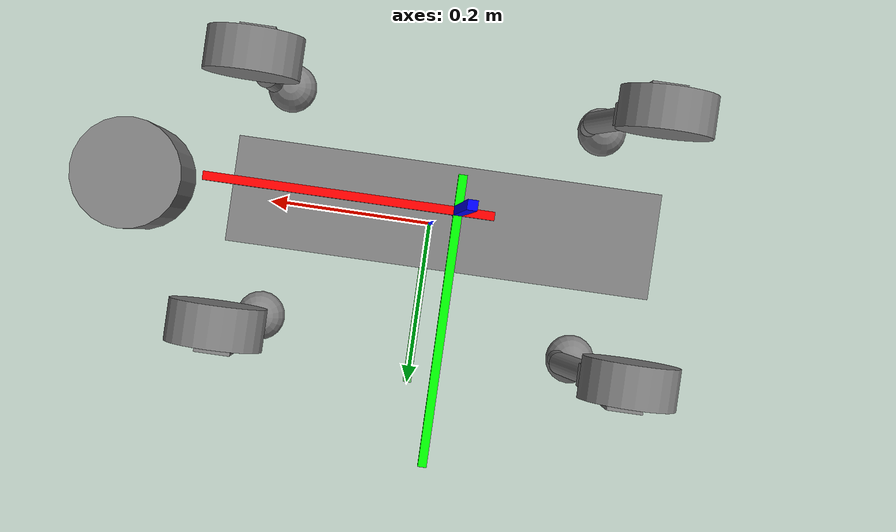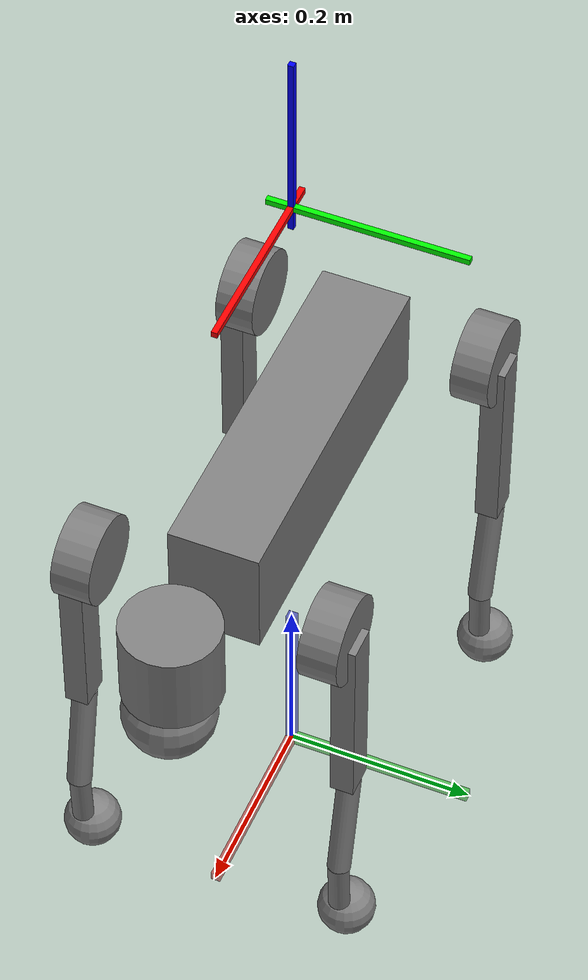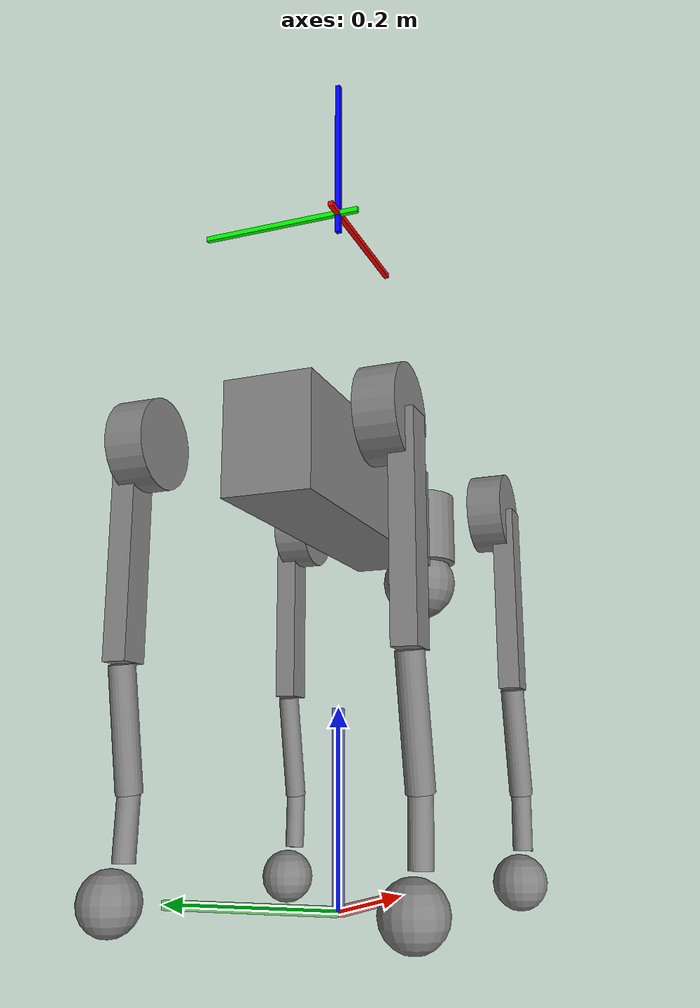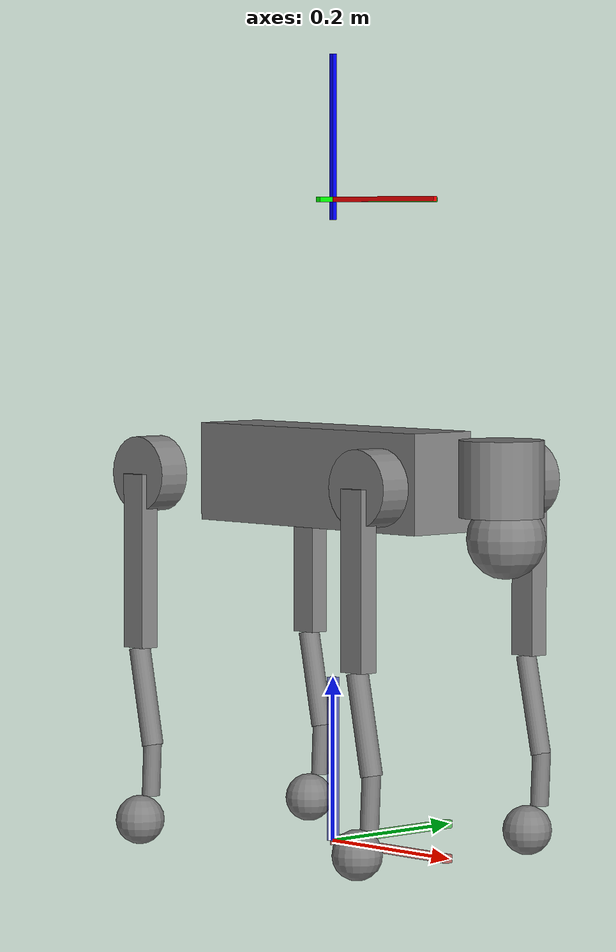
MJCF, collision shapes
<mujoco model="go2">
  <compiler angle="radian" meshdir="assets" autolimits="true"/>

  <option cone="elliptic" impratio="100"/>
  <option integrator="implicitfast"/>
  <default>
    <default class="go2">
      <geom friction="0.6" margin="0.001" condim="1"/>
      <joint axis="0 1 0" damping="0.5" armature="0.01"/>
      <position kp="45" dampratio="1" inheritrange="1"/>
      <default class="abduction">
        <joint axis="1 0 0" range="-1.0472 1.0472"/>
      </default>
      <default class="hip">
        <default class="front_hip">
          <joint range="-1.5708 3.4907"/>
        </default>
        <default class="back_hip">
          <joint range="-0.5236 4.5379"/>
        </default>
      </default>
      <default class="knee">
        <joint range="-2.7227 -0.83776"/>
      </default>
      <default class="visual">
        <geom type="mesh" contype="0" conaffinity="0" group="2"/>
      </default>
      <default class="collision">
        <geom group="3"/>
        <default class="foot">
          <geom type="sphere" size="0.03" friction="1 0.005 0.0001" pos="-0.002 0 -0.213" priority="1"
               solref="0.02 1" solimp="0.9 0.4 0.01" margin="0.01" gap="0.001"/>
        </default>
        <default class="foot_site">
          <site size="0.05" pos="-0.002 0 -0.213" group="3"/>
        </default>
      </default>
    </default>
  </default>

  <asset>
    <material name="metal" rgba=".9 .95 .95 1"/>
    <material name="black" rgba="0 0 0 1"/>
    <material name="white" rgba="1 1 1 1"/>
    <material name="gray" rgba="0.671705 0.692426 0.774270 1"/>

    <texture type="2d" name="Metal009_color"      file="../../../textures/Metal009_2K-PNG/Metal009_2K-PNG_Color.png"/>
    <texture type="2d" name="Metal009_roughness"  file="../../../textures/Metal009_2K-PNG/Metal009_2K-PNG_Roughness.png"/>
    <texture type="2d" name="Metal009_metalic"  file="../../../textures/Metal009_2K-PNG/Metal009_2K-PNG_Metalness.png"/>
    <texture type="2d" name="Metal009_normal"     file="../../../textures/Metal009_2K-PNG/Metal009_2K-PNG_NormalDX.png"/>

    <material name="pbr_metal_gray">
      <layer role="rgb"        texture="Metal009_color"/>
      <layer role="normal"     texture="Metal009_normal"/>
      <layer role="roughness"  texture="Metal009_roughness"/>
      <layer role="metallic"  texture="Metal009_metalic"/>
    </material>

    <texture type="2d" name="Metal044A_color"      file="../../../textures/Metal044A_2K-PNG/Metal044A_2K-PNG_Color.png"/>
    <texture type="2d" name="Metal044A_roughness"  file="../../../textures/Metal044A_2K-PNG/Metal044A_2K-PNG_Roughness.png"/>
    <texture type="2d" name="Metal044A_metalic"  file="../../../textures/Metal044A_2K-PNG/Metal044A_2K-PNG_Metalness.png"/>
    <texture type="2d" name="Metal044A_normal"     file="../../../textures/Metal044A_2K-PNG/Metal044A_2K-PNG_NormalDX.png"/>

    <material name="pbr_metal_silver_smooth">
      <layer role="rgb"        texture="Metal044A_color"/>
      <layer role="normal"     texture="Metal044A_normal"/>
      <layer role="roughness"  texture="Metal044A_roughness"/>
      <layer role="metallic"  texture="Metal044A_metalic"/>
    </material>

    <texture type="2d" name="Metal044B_color"      file="../../../textures/Metal044B_2K-PNG/Metal044B_2K-PNG_Color.png"/>
    <texture type="2d" name="Metal044B_roughness"  file="../../../textures/Metal044B_2K-PNG/Metal044B_2K-PNG_Roughness.png"/>
    <texture type="2d" name="Metal044B_metalic"  file="../../../textures/Metal044B_2K-PNG/Metal044B_2K-PNG_Metalness.png"/>
    <texture type="2d" name="Metal044B_normal"     file="../../../textures/Metal044B_2K-PNG/Metal044B_2K-PNG_NormalDX.png"/>

    <material name="pbr_metal_silver_rough">
      <layer role="rgb"        texture="Metal044B_color"/>
      <layer role="normal"     texture="Metal044B_normal"/>
      <layer role="roughness"  texture="Metal044B_roughness"/>
      <layer role="metallic"  texture="Metal044B_metalic"/>
    </material>

    <texture type="2d" name="Plastic006_color"      file="../../../textures/Plastic006_2K-PNG/Plastic006_2K-PNG_Color.png"/>
    <texture type="2d" name="Plastic006_roughness"  file="../../../textures/Plastic006_2K-PNG/Plastic006_2K-PNG_Roughness.png"/>
    <texture type="2d" name="Plastic006_normal"     file="../../../textures/Plastic006_2K-PNG/Plastic006_2K-PNG_NormalDX.png"/>

    <material name="pbr_plastic_black" metallic ="0.05">
      <layer role="rgb"        texture="Plastic006_color"/>
      <layer role="normal"     texture="Plastic006_normal"/>
      <layer role="roughness"  texture="Plastic006_roughness"/>
    </material>

    <texture type="2d" name="Plastic013A_color"      file="../../../textures/Plastic013A_2K-PNG/Plastic013A_2K-PNG_Color.png"/>
    <texture type="2d" name="Plastic013A_roughness"  file="../../../textures/Plastic013A_2K-PNG/Plastic013A_2K-PNG_Roughness.png"/>
    <texture type="2d" name="Plastic013A_normal"     file="../../../textures/Plastic013A_2K-PNG/Plastic013A_2K-PNG_NormalDX.png"/>

    <material name="pbr_plastic_white" metallic ="0.05">
      <layer role="rgb"        texture="Plastic013A_color"/>
      <layer role="normal"     texture="Plastic013A_normal"/>
      <layer role="roughness"  texture="Plastic013A_roughness"/>
    </material>

    <texture type="2d" name="Plastic010_color"      file="../../../textures/Plastic010_2K-PNG/Plastic010_2K-PNG_Color.png"/>
    <texture type="2d" name="Plastic010_roughness"  file="../../../textures/Plastic010_2K-PNG/Plastic010_2K-PNG_Roughness.png"/>
    <texture type="2d" name="Plastic010_normal"     file="../../../textures/Plastic010_2K-PNG/Plastic010_2K-PNG_NormalDX.png"/>

    <material name="pbr_plastic_gray" metallic ="0.05">
      <layer role="rgb"        texture="Plastic010_color"/>
      <layer role="normal"     texture="Plastic010_normal"/>
      <layer role="roughness"  texture="Plastic010_roughness"/>
    </material>

    <mesh file="base_0.obj"/>
    <mesh file="base_1.obj"/>
    <mesh file="base_2.obj"/>
    <mesh file="base_3.obj"/>
    <mesh file="base_4.obj"/>
    <mesh file="hip_0.obj"/>
    <mesh file="hip_1.obj"/>
    <mesh file="thigh_0.obj"/>
    <mesh file="thigh_1.obj"/>
    <mesh file="thigh_mirror_0.obj"/>
    <mesh file="thigh_mirror_1.obj"/>
    <mesh file="calf_0.obj"/>
    <mesh file="calf_1.obj"/>
    <mesh file="calf_mirror_0.obj"/>
    <mesh file="calf_mirror_1.obj"/>
    <mesh file="foot.obj"/>
  </asset>

  <worldbody>
    <body name="command_indicator_mocap" pos="0 0 0" mocap="true">
      <geom conaffinity="0" contype="0" pos="0.1 0 0" rgba="0.7 0 0 0.5" size="0.1 0.005 0.005" type="box" group="1"></geom>
      <geom conaffinity="0" contype="0" pos="0 0.1 0" rgba="0 0.7 0 0.5" size="0.005 0.1 0.005" type="box" group="1"></geom>
      <geom conaffinity="0" contype="0" pos="0 0 0.1" rgba="0 0 0.7 0.5" size="0.005 0.005 0.1" type="box" group="1"></geom>
    </body>
    <body mocap="true" name="mocap" pos="0. 0. 0.78">
      <site pos="0 0 0.075" size="0.003 0.003 0.1" type="box" name="mocap_left_site1" rgba="0 0 1 1"/>
      <site pos="0 0.075 0" size="0.003 0.1 0.003" type="box" name="mocap_left_site2" rgba="0 1 0 1"/>
      <site pos="0.075 0 0" size="0.1 0.003 0.003" type="box" name="mocap_left_site3" rgba="1 0 0 1"/>
    </body>

    <body name="base" pos="0 0 0.445" childclass="go2">
      <inertial pos="0.021112 0 -0.005366" quat="-0.000543471 0.713435 -0.00173769 0.700719" mass="6.921"
        diaginertia="0.107027 0.0980771 0.0244531"/>
      <freejoint name="base"/>
      <geom mesh="base_0" material="pbr_plastic_black" class="visual"/>
      <geom mesh="base_1" material="pbr_plastic_black" class="visual"/>
      <geom mesh="base_2" material="pbr_plastic_black" class="visual"/>
      <geom mesh="base_3" material="pbr_plastic_white" class="visual"/>
      <geom mesh="base_4" material="pbr_plastic_gray" class="visual"/>
      <geom size="0.1881 0.04675 0.06" type="box" class="collision"/>
      <geom size="0.05 0.045" pos="0.285 0 0.01" type="cylinder" class="collision"/>
      <geom size="0.047" pos="0.293 0 -0.06" class="collision"/>
      <site name="imu" pos="-0.02557 0 0.04232"/>
      <body name="FL_hip" pos="0.1934 0.0465 0">
        <inertial pos="-0.0054 0.00194 -0.000105" quat="0.497014 0.499245 0.505462 0.498237" mass="0.678"
          diaginertia="0.00088403 0.000596003 0.000479967"/>
        <joint name="FL_hip_joint" class="abduction"/>
        <geom mesh="hip_0" material="pbr_metal_gray" class="visual"/>
        <geom mesh="hip_1" material="pbr_plastic_gray" class="visual"/>
        <geom size="0.046 0.02" pos="0 0.08 0" quat="1 1 0 0" type="cylinder" class="collision"/>
        <body name="FL_thigh" pos="0 0.0955 0">
          <inertial pos="-0.00374 -0.0223 -0.0327" quat="0.829533 0.0847635 -0.0200632 0.551623" mass="1.152"
            diaginertia="0.00594973 0.00584149 0.000878787"/>
          <joint name="FL_thigh_joint" class="front_hip"/>
          <geom mesh="thigh_0" material="pbr_metal_silver_rough" class="visual"/>
          <geom mesh="thigh_1" material="pbr_plastic_gray" class="visual"/>
          <geom size="0.1065 0.01225 0.017" pos="0 0 -0.1065" quat="0.707107 0 0.707107 0" type="box" class="collision"/>
          <body name="FL_calf" pos="0 0 -0.213">
            <inertial pos="0.00629595 -0.000622121 -0.141417" quat="0.710672 0.00154099 -0.00450087 0.703508"
              mass="0.241352" diaginertia="0.0014901 0.00146356 5.31397e-05"/>
            <joint name="FL_calf_joint" class="knee"/>
            <geom mesh="calf_0" material="pbr_plastic_gray" class="visual"/>
            <geom mesh="calf_1" material="pbr_plastic_black" class="visual"/>
            <geom size="0.012 0.06" pos="0.008 0 -0.06" quat="0.994493 0 -0.104807 0" type="cylinder" class="collision"/>
            <geom size="0.011 0.0325" pos="0.02 0 -0.148" quat="0.999688 0 0.0249974 0" type="cylinder" class="collision"/>
            <geom pos="0 0 -0.213" mesh="foot" class="visual" material="pbr_plastic_black"/>
            <body name="FL_foot">
              <geom name="FL" class="foot"/>
              <site name="FL_site" class="foot_site" />
            </body>
          </body>
        </body>
      </body>
      <body name="FR_hip" pos="0.1934 -0.0465 0">
        <inertial pos="-0.0054 -0.00194 -0.000105" quat="0.498237 0.505462 0.499245 0.497014" mass="0.678"
          diaginertia="0.00088403 0.000596003 0.000479967"/>
        <joint name="FR_hip_joint" class="abduction"/>
        <geom mesh="hip_0" material="pbr_metal_gray" class="visual" quat="4.63268e-05 1 0 0"/>
        <geom mesh="hip_1" material="pbr_plastic_gray" class="visual" quat="4.63268e-05 1 0 0"/>
        <geom size="0.046 0.02" pos="0 -0.08 0" quat="0.707107 0.707107 0 0" type="cylinder" class="collision"/>
        <body name="FR_thigh" pos="0 -0.0955 0">
          <inertial pos="-0.00374 0.0223 -0.0327" quat="0.551623 -0.0200632 0.0847635 0.829533" mass="1.152"
            diaginertia="0.00594973 0.00584149 0.000878787"/>
          <joint name="FR_thigh_joint" class="front_hip"/>
          <geom mesh="thigh_mirror_0" material="pbr_metal_silver_rough" class="visual"/>
          <geom mesh="thigh_mirror_1" material="pbr_plastic_gray" class="visual"/>
          <geom size="0.1065 0.01225 0.017" pos="0 0 -0.1065" quat="0.707107 0 0.707107 0" type="box" class="collision"/>
          <body name="FR_calf" pos="0 0 -0.213">
            <inertial pos="0.00629595 0.000622121 -0.141417" quat="0.703508 -0.00450087 0.00154099 0.710672"
              mass="0.241352" diaginertia="0.0014901 0.00146356 5.31397e-05"/>
            <joint name="FR_calf_joint" class="knee"/>
            <geom mesh="calf_mirror_0" material="pbr_plastic_gray" class="visual"/>
            <geom mesh="calf_mirror_1" material="pbr_plastic_black" class="visual"/>
            <geom size="0.013 0.06" pos="0.01 0 -0.06" quat="0.995004 0 -0.0998334 0" type="cylinder" class="collision"/>
            <geom size="0.011 0.0325" pos="0.02 0 -0.148" quat="0.999688 0 0.0249974 0" type="cylinder" class="collision"/>
            <geom pos="0 0 -0.213" mesh="foot" class="visual" material="pbr_plastic_black"/>
            <body name="FR_foot">
              <geom name="FR" class="foot"/>
              <site name="FR_site" class="foot_site" />
            </body>
          </body>
        </body>
      </body>
      <body name="RL_hip" pos="-0.1934 0.0465 0">
        <inertial pos="0.0054 0.00194 -0.000105" quat="0.505462 0.498237 0.497014 0.499245" mass="0.678"
          diaginertia="0.00088403 0.000596003 0.000479967"/>
        <joint name="RL_hip_joint" class="abduction"/>
        <geom mesh="hip_0" material="pbr_metal_gray" class="visual" quat="4.63268e-05 0 1 0"/>
        <geom mesh="hip_1" material="pbr_plastic_gray" class="visual" quat="4.63268e-05 0 1 0"/>
        <geom size="0.046 0.02" pos="0 0.08 0" quat="0.707107 0.707107 0 0" type="cylinder" class="collision"/>
        <body name="RL_thigh" pos="0 0.0955 0">
          <inertial pos="-0.00374 -0.0223 -0.0327" quat="0.829533 0.0847635 -0.0200632 0.551623" mass="1.152"
            diaginertia="0.00594973 0.00584149 0.000878787"/>
          <joint name="RL_thigh_joint" class="back_hip"/>
          <geom mesh="thigh_0" material="pbr_metal_silver_rough" class="visual"/>
          <geom mesh="thigh_1" material="pbr_plastic_gray" class="visual"/>
          <geom size="0.1065 0.01225 0.017" pos="0 0 -0.1065" quat="0.707107 0 0.707107 0" type="box" class="collision"/>
          <body name="RL_calf" pos="0 0 -0.213">
            <inertial pos="0.00629595 -0.000622121 -0.141417" quat="0.710672 0.00154099 -0.00450087 0.703508"
              mass="0.241352" diaginertia="0.0014901 0.00146356 5.31397e-05"/>
            <joint name="RL_calf_joint" class="knee"/>
            <geom mesh="calf_0" material="pbr_plastic_gray" class="visual"/>
            <geom mesh="calf_1" material="pbr_plastic_black" class="visual"/>
            <geom size="0.013 0.06" pos="0.01 0 -0.06" quat="0.995004 0 -0.0998334 0" type="cylinder" class="collision"/>
            <geom size="0.011 0.0325" pos="0.02 0 -0.148" quat="0.999688 0 0.0249974 0" type="cylinder" class="collision"/>
            <geom pos="0 0 -0.213" mesh="foot" class="visual" material="pbr_plastic_black"/>
            <body name="RL_foot">
              <geom name="RL" class="foot"/>
              <site name="RL_site" class="foot_site" />
            </body>
          </body>
        </body>
      </body>
      <body name="RR_hip" pos="-0.1934 -0.0465 0">
        <inertial pos="0.0054 -0.00194 -0.000105" quat="0.499245 0.497014 0.498237 0.505462" mass="0.678"
          diaginertia="0.00088403 0.000596003 0.000479967"/>
        <joint name="RR_hip_joint" class="abduction"/>
        <geom mesh="hip_0" material="pbr_metal_gray" class="visual" quat="2.14617e-09 4.63268e-05 4.63268e-05 -1"/>
        <geom mesh="hip_1" material="pbr_plastic_gray" class="visual" quat="2.14617e-09 4.63268e-05 4.63268e-05 -1"/>
        <geom size="0.046 0.02" pos="0 -0.08 0" quat="0.707107 0.707107 0 0" type="cylinder" class="collision"/>
        <body name="RR_thigh" pos="0 -0.0955 0">
          <inertial pos="-0.00374 0.0223 -0.0327" quat="0.551623 -0.0200632 0.0847635 0.829533" mass="1.152"
            diaginertia="0.00594973 0.00584149 0.000878787"/>
          <joint name="RR_thigh_joint" class="back_hip"/>
          <geom mesh="thigh_mirror_0" material="pbr_metal_silver_rough" class="visual"/>
          <geom mesh="thigh_mirror_1" material="pbr_plastic_gray" class="visual"/>
          <geom size="0.1065 0.01225 0.017" pos="0 0 -0.1065" quat="0.707107 0 0.707107 0" type="box" class="collision"/>
          <body name="RR_calf" pos="0 0 -0.213">
            <inertial pos="0.00629595 0.000622121 -0.141417" quat="0.703508 -0.00450087 0.00154099 0.710672"
              mass="0.241352" diaginertia="0.0014901 0.00146356 5.31397e-05"/>
            <joint name="RR_calf_joint" class="knee"/>
            <geom mesh="calf_mirror_0" material="pbr_plastic_gray" class="visual"/>
            <geom mesh="calf_mirror_1" material="pbr_plastic_black" class="visual"/>
            <geom size="0.013 0.06" pos="0.01 0 -0.06" quat="0.995004 0 -0.0998334 0" type="cylinder" class="collision"/>
            <geom size="0.011 0.0325" pos="0.02 0 -0.148" quat="0.999688 0 0.0249974 0" type="cylinder" class="collision"/>
            <geom pos="0 0 -0.213" mesh="foot" class="visual" material="pbr_plastic_black"/>
            <body name="RR_foot">
              <geom name="RR" class="foot"/>
              <site name="RR_site" class="foot_site" />
            </body>
          </body>
        </body>
      </body>
    </body>
  </worldbody>

  <actuator>
    <!-- 前左腿 -->
    <position name="FL_hip_actuator" joint="FL_hip_joint" class="go2"
              forcelimited="true" forcerange="-23.7 23.7"/>
    <position name="FL_thigh_actuator" joint="FL_thigh_joint" class="go2"
              forcelimited="true" forcerange="-23.7 23.7"/>
    <position name="FL_calf_actuator" joint="FL_calf_joint" class="go2"
              forcelimited="true" forcerange="-45.43 45.43"/>

    <!-- 前右腿 -->
    <position name="FR_hip_actuator" joint="FR_hip_joint" class="go2"
              forcelimited="true" forcerange="-23.7 23.7"/>
    <position name="FR_thigh_actuator" joint="FR_thigh_joint" class="go2"
              forcelimited="true" forcerange="-23.7 23.7"/>
    <position name="FR_calf_actuator" joint="FR_calf_joint" class="go2"
              forcelimited="true" forcerange="-45.43 45.43"/>

    <!-- 后左腿 -->
    <position name="RL_hip_actuator" joint="RL_hip_joint" class="go2"
              forcelimited="true" forcerange="-23.7 23.7"/>
    <position name="RL_thigh_actuator" joint="RL_thigh_joint" class="go2"
              forcelimited="true" forcerange="-23.7 23.7"/>
    <position name="RL_calf_actuator" joint="RL_calf_joint" class="go2"
              forcelimited="true" forcerange="-45.43 45.43"/>

    <!-- 后右腿 -->
    <position name="RR_hip_actuator" joint="RR_hip_joint" class="go2"
              forcelimited="true" forcerange="-23.7 23.7"/>
    <position name="RR_thigh_actuator" joint="RR_thigh_joint" class="go2"
              forcelimited="true" forcerange="-23.7 23.7"/>
    <position name="RR_calf_actuator" joint="RR_calf_joint" class="go2"
              forcelimited="true" forcerange="-45.43 45.43"/>
  </actuator>

  <sensor>
    <framequat name="imu_quat" objtype="site" objname="imu"/>
    <gyro name="imu_omega" site="imu" noise="5e-4" cutoff="34.9"/>
    <accelerometer name="imu_acc" site="imu" noise="1e-2" cutoff="157"/>
    <touch name="FL_touch" site="FL_site"/>
    <touch name="FR_touch" site="FR_site"/>
    <touch name="RL_touch" site="RL_site"/>
    <touch name="RR_touch" site="RR_site"/>
  </sensor>

</mujoco>
